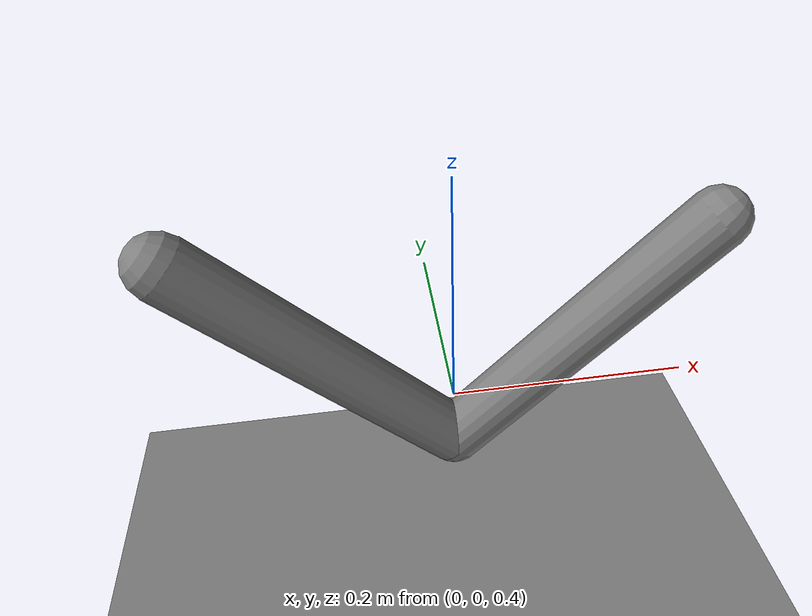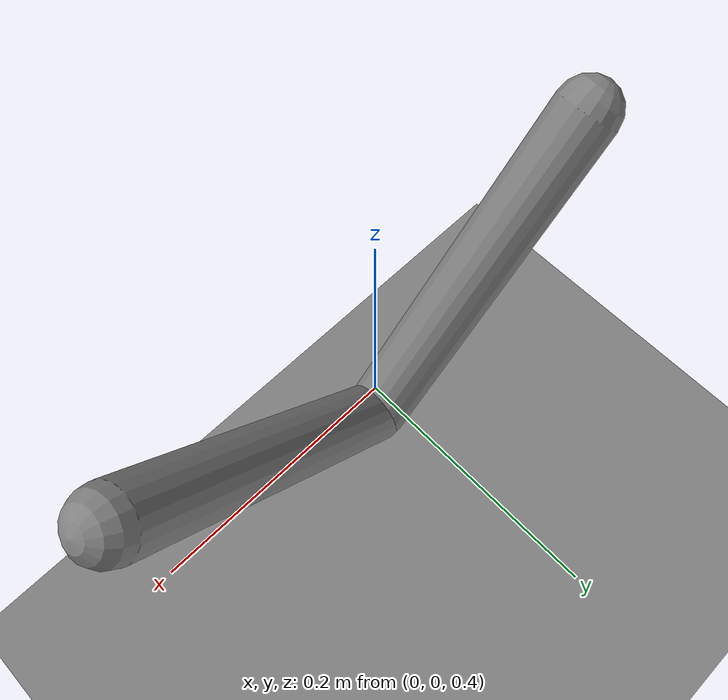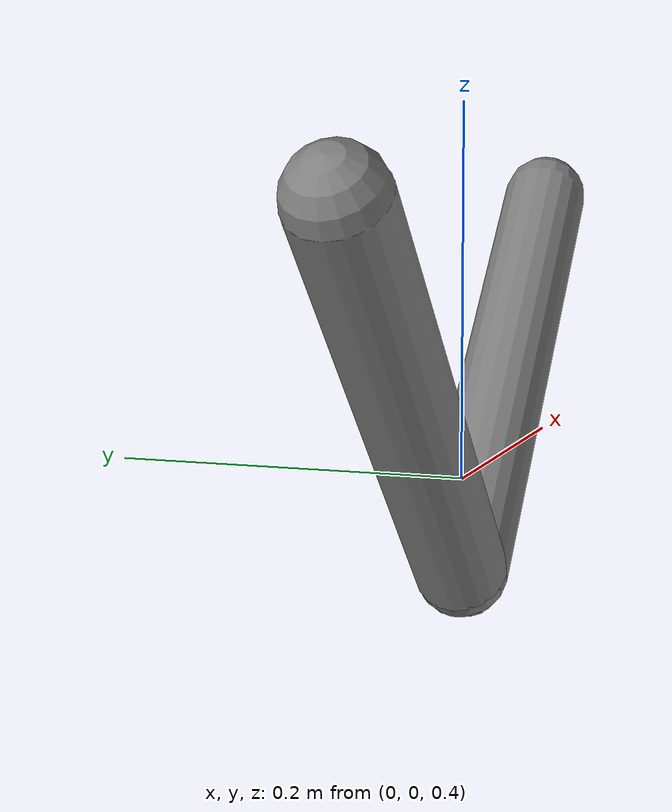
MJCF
<?xml version="1.0"?>
<mujoco model="reachy_closed_loop_probe">
  <compiler angle="radian"/>
  <option timestep="0.002" gravity="0 0 -9.81" integrator="implicitfast"/>
  <default>
    <joint damping="0.05" armature="0.001"/>
    <geom density="500" friction="0.8 0.01 0.001"/>
  </default>
  <worldbody>
    <geom name="ground" type="plane" size="1 1 0.05"/>
    <body name="left_link" pos="-0.2 0 0.55">
      <joint name="left_hinge" type="hinge" axis="0 1 0" damping="0.1"/>
      <geom name="left_rod" type="capsule" fromto="0 0 0 0.2 0 -0.2" size="0.025" contype="0" conaffinity="0"/>
      <site name="left_tip" pos="0.2 0 -0.2" size="0.01"/>
    </body>
    <body name="right_link" pos="0.2 0 0.55">
      <joint name="right_hinge" type="hinge" axis="0 1 0" damping="0.1"/>
      <geom name="right_rod" type="capsule" fromto="0 0 0 -0.2 0 -0.2" size="0.025" contype="0" conaffinity="0"/>
      <site name="right_tip" pos="-0.2 0 -0.2" size="0.01"/>
    </body>
  </worldbody>
  <equality>
    <connect name="tip_loop_closure" site1="left_tip" site2="right_tip" solref="0.002 1"/>
  </equality>
</mujoco>
